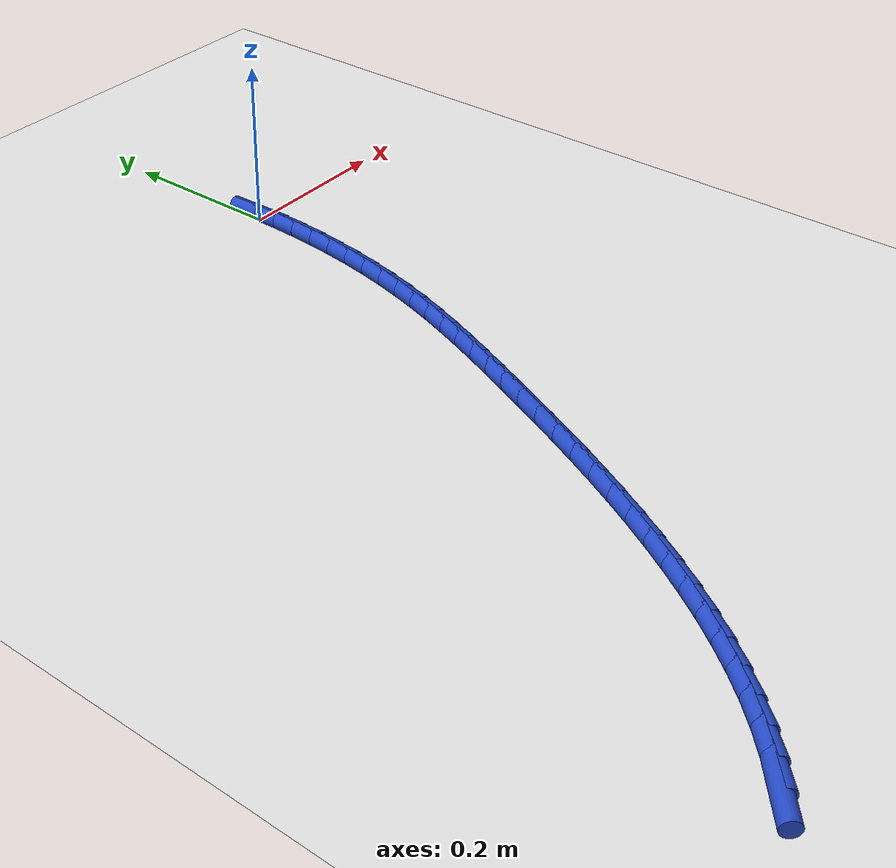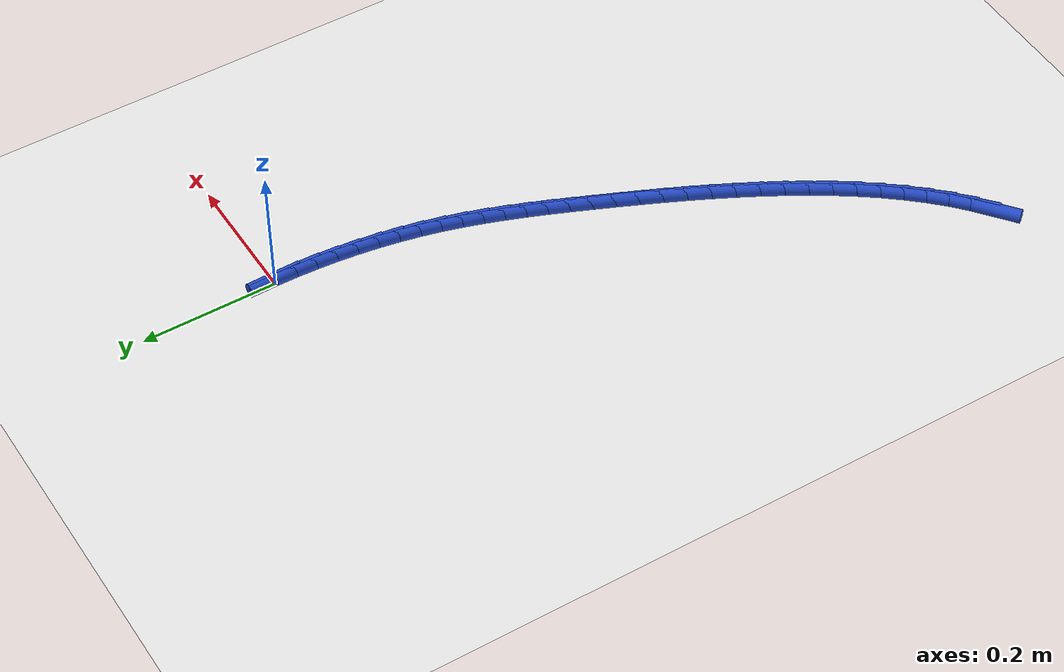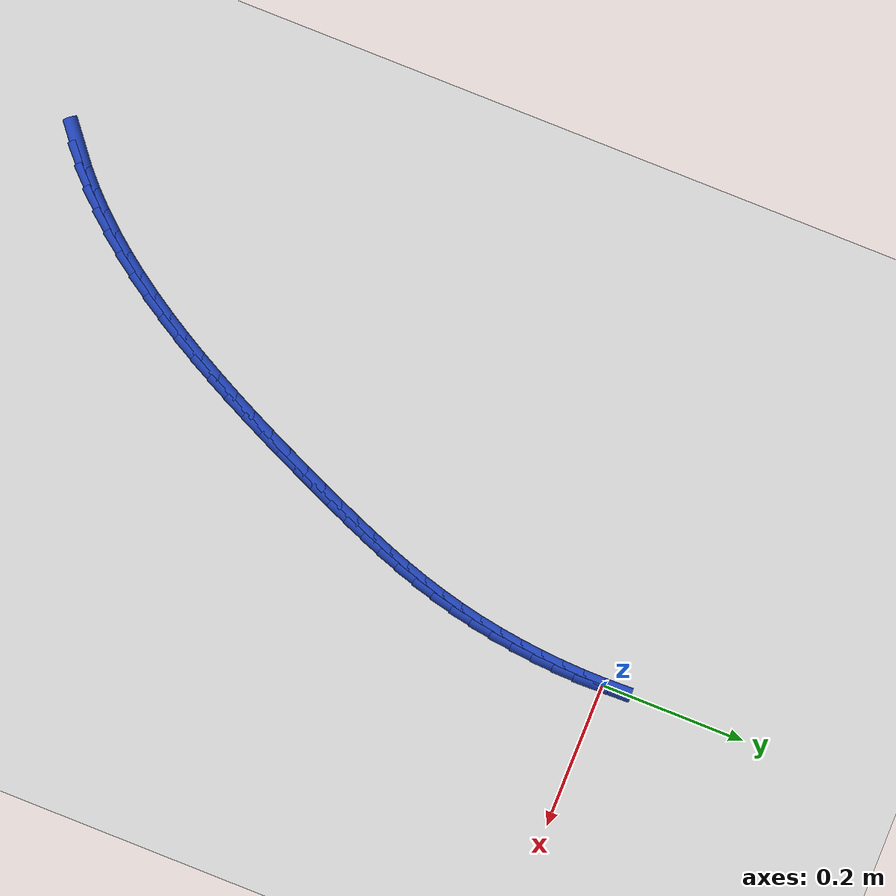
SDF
<sdf version="1.6">
 <world name="default">
  <model name="ground_plane">
   <static>1</static>
   <link name="link">
    <collision name="collision">
     <geometry><plane><normal>0 0 1</normal><size>100 100</size></plane></geometry>
     <surface><friction><ode><mu>100</mu><mu2>50</mu2></ode></friction></surface>
    </collision>
    <visual name="visual">
     <cast_shadows>0</cast_shadows>
     <geometry><plane><normal>0 0 1</normal><size>100 100</size></plane></geometry>
     <material>
      <script><uri>file://media/materials/scripts/gazebo.material</uri><name>Gazebo/WhiteGlow</name></script>
     </material>
    </visual>
   </link>
  </model>
  <model name="line">
   <link name="link_0">
    <pose>-9.107298248878237e-18 -2.7755575615628914e-17 0.01 0 1.57 -1.5487160441781933</pose>
    <collision name="collision">
     <geometry><cylinder><radius>0.01</radius><length>0.08</length></cylinder></geometry>
    </collision>
    <visual name="visual">
     <material>
      <script><name>Gazebo/Blue</name><uri>file://media/materials/scripts/gazebo.material</uri></script>
     </material>
     <geometry><cylinder><radius>0.01</radius><length>0.08</length></cylinder></geometry>
    </visual>
   </link>
   <link name="link_238">
    <pose>-0.4098219731882683 -0.9118056626835376 0.01 0 1.57 0.6681798715984847</pose>
    <collision name="collision">
     <geometry><cylinder><radius>0.01</radius><length>0.08</length></cylinder></geometry>
    </collision>
    <visual name="visual">
     <material>
      <script><name>Gazebo/Blue</name><uri>file://media/materials/scripts/gazebo.material</uri></script>
     </material>
     <geometry><cylinder><radius>0.01</radius><length>0.08</length></cylinder></geometry>
    </visual>
   </link>
   <link name="link_239">
    <pose>-0.38565782711069274 -0.8927330018617364 0.01 0 1.57 0.7320836329047203</pose>
    <collision name="collision">
     <geometry><cylinder><radius>0.01</radius><length>0.08</length></cylinder></geometry>
    </collision>
    <visual name="visual">
     <material>
      <script><name>Gazebo/Blue</name><uri>file://media/materials/scripts/gazebo.material</uri></script>
     </material>
     <geometry><cylinder><radius>0.01</radius><length>0.08</length></cylinder></geometry>
    </visual>
   </link>
   <link name="link_240">
    <pose>-0.3624324152148293 -0.8718608604167752 0.01 0 1.57 0.7899119943040163</pose>
    <collision name="collision">
     <geometry><cylinder><radius>0.01</radius><length>0.08</length></cylinder></geometry>
    </collision>
    <visual name="visual">
     <material>
      <script><name>Gazebo/Blue</name><uri>file://media/materials/scripts/gazebo.material</uri></script>
     </material>
     <geometry><cylinder><radius>0.01</radius><length>0.08</length></cylinder></geometry>
    </visual>
   </link>
   <link name="link_241">
    <pose>-0.3401134030239314 -0.8493394447420773 0.01 0 1.57 0.8419859231219321</pose>
    <collision name="collision">
     <geometry><cylinder><radius>0.01</radius><length>0.08</length></cylinder></geometry>
    </collision>
    <visual name="visual">
     <material>
      <script><name>Gazebo/Blue</name><uri>file://media/materials/scripts/gazebo.material</uri></script>
     </material>
     <geometry><cylinder><radius>0.01</radius><length>0.08</length></cylinder></geometry>
    </visual>
   </link>
   <link name="link_242">
    <pose>-0.31866845606124916 -0.8253189612310627 0.01 0 1.57 0.8887024431227553</pose>
    <collision name="collision">
     <geometry><cylinder><radius>0.01</radius><length>0.08</length></cylinder></geometry>
    </collision>
    <visual name="visual">
     <material>
      <script><name>Gazebo/Blue</name><uri>file://media/materials/scripts/gazebo.material</uri></script>
     </material>
     <geometry><cylinder><radius>0.01</radius><length>0.08</length></cylinder></geometry>
    </visual>
   </link>
   <link name="link_243">
    <pose>-0.29806523985003575 -0.7999496162771547 0.01 0 1.57 0.9304869320132966</pose>
    <collision name="collision">
     <geometry><cylinder><radius>0.01</radius><length>0.08</length></cylinder></geometry>
    </collision>
    <visual name="visual">
     <material>
      <script><name>Gazebo/Blue</name><uri>file://media/materials/scripts/gazebo.material</uri></script>
     </material>
     <geometry><cylinder><radius>0.01</radius><length>0.08</length></cylinder></geometry>
    </visual>
   </link>
   <link name="link_244">
    <pose>-0.27827141991354154 -0.7733816162737734 0.01 0 1.57 0.9677606560628147</pose>
    <collision name="collision">
     <geometry><cylinder><radius>0.01</radius><length>0.08</length></cylinder></geometry>
    </collision>
    <visual name="visual">
     <material>
      <script><name>Gazebo/Blue</name><uri>file://media/materials/scripts/gazebo.material</uri></script>
     </material>
     <geometry><cylinder><radius>0.01</radius><length>0.08</length></cylinder></geometry>
    </visual>
   </link>
   <link name="link_245">
    <pose>-0.2592546617750195 -0.7457651676143422 0.01 0 1.57 1.000920357644259</pose>
    <collision name="collision">
     <geometry><cylinder><radius>0.01</radius><length>0.08</length></cylinder></geometry>
    </collision>
    <visual name="visual">
     <material>
      <script><name>Gazebo/Blue</name><uri>file://media/materials/scripts/gazebo.material</uri></script>
     </material>
     <geometry><cylinder><radius>0.01</radius><length>0.08</length></cylinder></geometry>
    </visual>
   </link>
   <link name="link_246">
    <pose>-0.24098263095772057 -0.7172504766922816 0.01 0 1.57 1.030326525694386</pose>
    <collision name="collision">
     <geometry><cylinder><radius>0.01</radius><length>0.08</length></cylinder></geometry>
    </collision>
    <visual name="visual">
     <material>
      <script><name>Gazebo/Blue</name><uri>file://media/materials/scripts/gazebo.material</uri></script>
     </material>
     <geometry><cylinder><radius>0.01</radius><length>0.08</length></cylinder></geometry>
    </visual>
   </link>
   <link name="link_247">
    <pose>-0.22342299298489612 -0.6879877499010127 0.01 0 1.57 1.0562974545372787</pose>
    <collision name="collision">
     <geometry><cylinder><radius>0.01</radius><length>0.08</length></cylinder></geometry>
    </collision>
    <visual name="visual">
     <material>
      <script><name>Gazebo/Blue</name><uri>file://media/materials/scripts/gazebo.material</uri></script>
     </material>
     <geometry><cylinder><radius>0.01</radius><length>0.08</length></cylinder></geometry>
    </visual>
   </link>
   <link name="link_248">
    <pose>-0.20654341337979876 -0.658127193633959 0.01 0 1.57 1.0791068554343826</pose>
    <collision name="collision">
     <geometry><cylinder><radius>0.01</radius><length>0.08</length></cylinder></geometry>
    </collision>
    <visual name="visual">
     <material>
      <script><name>Gazebo/Blue</name><uri>file://media/materials/scripts/gazebo.material</uri></script>
     </material>
     <geometry><cylinder><radius>0.01</radius><length>0.08</length></cylinder></geometry>
    </visual>
   </link>
   <link name="link_249">
    <pose>-0.19031155766567925 -0.62781901428454 0.01 0 1.57 1.0989833951410246</pose>
    <collision name="collision">
     <geometry><cylinder><radius>0.01</radius><length>0.08</length></cylinder></geometry>
    </collision>
    <visual name="visual">
     <material>
      <script><name>Gazebo/Blue</name><uri>file://media/materials/scripts/gazebo.material</uri></script>
     </material>
     <geometry><cylinder><radius>0.01</radius><length>0.08</length></cylinder></geometry>
    </visual>
   </link>
   <link name="link_250">
    <pose>-0.17469509136579026 -0.5972134182461796 0.01 0 1.57 1.1161110118783386</pose>
    <collision name="collision">
     <geometry><cylinder><radius>0.01</radius><length>0.08</length></cylinder></geometry>
    </collision>
    <visual name="visual">
     <material>
      <script><name>Gazebo/Blue</name><uri>file://media/materials/scripts/gazebo.material</uri></script>
     </material>
     <geometry><cylinder><radius>0.01</radius><length>0.08</length></cylinder></geometry>
    </visual>
   </link>
   <link name="link_251">
    <pose>-0.15966168000338243 -0.5664606119122971 0.01 0 1.57 1.1306291891104938</pose>
    <collision name="collision">
     <geometry><cylinder><radius>0.01</radius><length>0.08</length></cylinder></geometry>
    </collision>
    <visual name="visual">
     <material>
      <script><name>Gazebo/Blue</name><uri>file://media/materials/scripts/gazebo.material</uri></script>
     </material>
     <geometry><cylinder><radius>0.01</radius><length>0.08</length></cylinder></geometry>
    </visual>
   </link>
   <link name="link_252">
    <pose>-0.14517898910170854 -0.5357108016763165 0.01 0 1.57 1.1426325661037084</pose>
    <collision name="collision">
     <geometry><cylinder><radius>0.01</radius><length>0.08</length></cylinder></geometry>
    </collision>
    <visual name="visual">
     <material>
      <script><name>Gazebo/Blue</name><uri>file://media/materials/scripts/gazebo.material</uri></script>
     </material>
     <geometry><cylinder><radius>0.01</radius><length>0.08</length></cylinder></geometry>
    </visual>
   </link>
   <link name="link_253">
    <pose>-0.13121468418401927 -0.5051141939316572 0.01 0 1.57 1.1521693497767458</pose>
    <collision name="collision">
     <geometry><cylinder><radius>0.01</radius><length>0.08</length></cylinder></geometry>
    </collision>
    <visual name="visual">
     <material>
      <script><name>Gazebo/Blue</name><uri>file://media/materials/scripts/gazebo.material</uri></script>
     </material>
     <geometry><cylinder><radius>0.01</radius><length>0.08</length></cylinder></geometry>
    </visual>
   </link>
   <link name="link_254">
    <pose>-0.11773643077356724 -0.47482099507174325 0.01 0 1.57 1.159240409678603</pose>
    <collision name="collision">
     <geometry><cylinder><radius>0.01</radius><length>0.08</length></cylinder></geometry>
    </collision>
    <visual name="visual">
     <material>
      <script><name>Gazebo/Blue</name><uri>file://media/materials/scripts/gazebo.material</uri></script>
     </material>
     <geometry><cylinder><radius>0.01</radius><length>0.08</length></cylinder></geometry>
    </visual>
   </link>
   <link name="link_255">
    <pose>-0.10471193428024685 -0.44498130475699166 0.01 0 1.57 1.1654378583785592</pose>
    <collision name="collision">
     <geometry><cylinder><radius>0.01</radius><length>0.08</length></cylinder></geometry>
    </collision>
    <visual name="visual">
     <material>
      <script><name>Gazebo/Blue</name><uri>file://media/materials/scripts/gazebo.material</uri></script>
     </material>
     <geometry><cylinder><radius>0.01</radius><length>0.08</length></cylinder></geometry>
    </visual>
   </link>
   <link name="link_256">
    <pose>-0.09213549396333666 -0.41567405994434564 0.01 0 1.57 1.175301675979812</pose>
    <collision name="collision">
     <geometry><cylinder><radius>0.01</radius><length>0.08</length></cylinder></geometry>
    </collision>
    <visual name="visual">
     <material>
      <script><name>Gazebo/Blue</name><uri>file://media/materials/scripts/gazebo.material</uri></script>
     </material>
     <geometry><cylinder><radius>0.01</radius><length>0.08</length></cylinder></geometry>
    </visual>
   </link>
   <link name="link_257">
    <pose>-0.08007404146924846 -0.386783839979924 0.01 0 1.57 1.1897283584183875</pose>
    <collision name="collision">
     <geometry><cylinder><radius>0.01</radius><length>0.08</length></cylinder></geometry>
    </collision>
    <visual name="visual">
     <material>
      <script><name>Gazebo/Blue</name><uri>file://media/materials/scripts/gazebo.material</uri></script>
     </material>
     <geometry><cylinder><radius>0.01</radius><length>0.08</length></cylinder></geometry>
    </visual>
   </link>
   <link name="link_258">
    <pose>-0.06860679477684993 -0.35816234711030126 0.01 0 1.57 1.208771346475908</pose>
    <collision name="collision">
     <geometry><cylinder><radius>0.01</radius><length>0.08</length></cylinder></geometry>
    </collision>
    <visual name="visual">
     <material>
      <script><name>Gazebo/Blue</name><uri>file://media/materials/scripts/gazebo.material</uri></script>
     </material>
     <geometry><cylinder><radius>0.01</radius><length>0.08</length></cylinder></geometry>
    </visual>
   </link>
   <link name="link_259">
    <pose>-0.05781297186500997 -0.3296612835820553 0.01 0 1.57 1.2323721608424683</pose>
    <collision name="collision">
     <geometry><cylinder><radius>0.01</radius><length>0.08</length></cylinder></geometry>
    </collision>
    <visual name="visual">
     <material>
      <script><name>Gazebo/Blue</name><uri>file://media/materials/scripts/gazebo.material</uri></script>
     </material>
     <geometry><cylinder><radius>0.01</radius><length>0.08</length></cylinder></geometry>
    </visual>
   </link>
   <link name="link_260">
    <pose>-0.04777179071259606 -0.30113235164176 0.01 0 1.57 1.260344931751467</pose>
    <collision name="collision">
     <geometry><cylinder><radius>0.01</radius><length>0.08</length></cylinder></geometry>
    </collision>
    <visual name="visual">
     <material>
      <script><name>Gazebo/Blue</name><uri>file://media/materials/scripts/gazebo.material</uri></script>
     </material>
     <geometry><cylinder><radius>0.01</radius><length>0.08</length></cylinder></geometry>
    </visual>
   </link>
   <link name="link_261">
    <pose>-0.03856246929847691 -0.27242725353599273 0.01 0 1.57 1.2923666341943005</pose>
    <collision name="collision">
     <geometry><cylinder><radius>0.01</radius><length>0.08</length></cylinder></geometry>
    </collision>
    <visual name="visual">
     <material>
      <script><name>Gazebo/Blue</name><uri>file://media/materials/scripts/gazebo.material</uri></script>
     </material>
     <geometry><cylinder><radius>0.01</radius><length>0.08</length></cylinder></geometry>
    </visual>
   </link>
   <link name="link_262">
    <pose>-0.030264225601520124 -0.2433976915113276 0.01 0 1.57 1.32783413733822</pose>
    <collision name="collision">
     <geometry><cylinder><radius>0.01</radius><length>0.08</length></cylinder></geometry>
    </collision>
    <visual name="visual">
     <material>
      <script><name>Gazebo/Blue</name><uri>file://media/materials/scripts/gazebo.material</uri></script>
     </material>
     <geometry><cylinder><radius>0.01</radius><length>0.08</length></cylinder></geometry>
    </visual>
   </link>
   <link name="link_263">
    <pose>-0.022953708162519893 -0.213902978699789 0.01 0 1.57 1.3638973676275827</pose>
    <collision name="collision">
     <geometry><cylinder><radius>0.01</radius><length>0.08</length></cylinder></geometry>
    </collision>
    <visual name="visual">
     <material>
      <script><name>Gazebo/Blue</name><uri>file://media/materials/scripts/gazebo.material</uri></script>
     </material>
     <geometry><cylinder><radius>0.01</radius><length>0.08</length></cylinder></geometry>
    </visual>
   </link>
   <link name="link_264">
    <pose>-0.016663142597567536 -0.18393401256480688 0.01 0 1.57 1.3986309103282029</pose>
    <collision name="collision">
     <geometry><cylinder><radius>0.01</radius><length>0.08</length></cylinder></geometry>
    </collision>
    <visual name="visual">
     <material>
      <script><name>Gazebo/Blue</name><uri>file://media/materials/scripts/gazebo.material</uri></script>
     </material>
     <geometry><cylinder><radius>0.01</radius><length>0.08</length></cylinder></geometry>
    </visual>
   </link>
   <link name="link_265">
    <pose>-0.011387217502894946 -0.15359287828864557 0.01 0 1.57 1.4322549417052286</pose>
    <collision name="collision">
     <geometry><cylinder><radius>0.01</radius><length>0.08</length></cylinder></geometry>
    </collision>
    <visual name="visual">
     <material>
      <script><name>Gazebo/Blue</name><uri>file://media/materials/scripts/gazebo.material</uri></script>
     </material>
     <geometry><cylinder><radius>0.01</radius><length>0.08</length></cylinder></geometry>
    </visual>
   </link>
   <link name="link_266">
    <pose>-0.007119441476109657 -0.12298515630587076 0.01 0 1.57 1.4650417754929055</pose>
    <collision name="collision">
     <geometry><cylinder><radius>0.01</radius><length>0.08</length></cylinder></geometry>
    </collision>
    <visual name="visual">
     <material>
      <script><name>Gazebo/Blue</name><uri>file://media/materials/scripts/gazebo.material</uri></script>
     </material>
     <geometry><cylinder><radius>0.01</radius><length>0.08</length></cylinder></geometry>
    </visual>
   </link>
   <link name="link_267">
    <pose>-0.0038533231148197592 -0.09221642705105187 0.01 0 1.57 1.4972547650615653</pose>
    <collision name="collision">
     <geometry><cylinder><radius>0.01</radius><length>0.08</length></cylinder></geometry>
    </collision>
    <visual name="visual">
     <material>
      <script><name>Gazebo/Blue</name><uri>file://media/materials/scripts/gazebo.material</uri></script>
     </material>
     <geometry><cylinder><radius>0.01</radius><length>0.08</length></cylinder></geometry>
    </visual>
   </link>
   <link name="link_268">
    <pose>-0.0015823710166329552 -0.061392270958755574 0.01 0 1.57 1.529152867522116</pose>
    <collision name="collision">
     <geometry><cylinder><radius>0.01</radius><length>0.08</length></cylinder></geometry>
    </collision>
    <visual name="visual">
     <material>
      <script><name>Gazebo/Blue</name><uri>file://media/materials/scripts/gazebo.material</uri></script>
     </material>
     <geometry><cylinder><radius>0.01</radius><length>0.08</length></cylinder></geometry>
    </visual>
   </link>
   <link name="link_269">
    <pose>-0.00030009377915706436 -0.030618268463548433 0.01 0 1.57 1.5609955057314604</pose>
    <collision name="collision">
     <geometry><cylinder><radius>0.01</radius><length>0.08</length></cylinder></geometry>
    </collision>
    <visual name="visual">
     <material>
      <script><name>Gazebo/Blue</name><uri>file://media/materials/scripts/gazebo.material</uri></script>
     </material>
     <geometry><cylinder><radius>0.01</radius><length>0.08</length></cylinder></geometry>
    </visual>
   </link>
   <link name="link_270">
    <pose>-2.168404344971009e-18 1.734723475976807e-16 0.01 0 1.57 -1.5485448594489801</pose>
    <collision name="collision">
     <geometry><cylinder><radius>0.01</radius><length>0.08</length></cylinder></geometry>
    </collision>
    <visual name="visual">
     <material>
      <script><name>Gazebo/Blue</name><uri>file://media/materials/scripts/gazebo.material</uri></script>
     </material>
     <geometry><cylinder><radius>0.01</radius><length>0.08</length></cylinder></geometry>
    </visual>
   </link>
  </model>
 </world>
</sdf>
